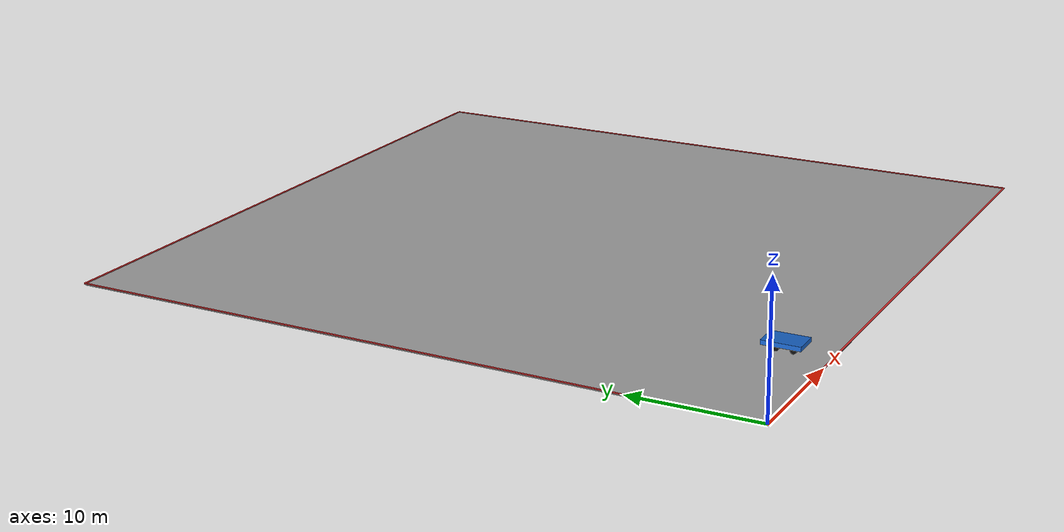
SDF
<?xml version="1.0"?>

<sdf version="1.10">

  <world name="test_world">

    <physics name="physics" type="ignored">
      <max_step_size>0.001</max_step_size>
      <real_time_factor>1.0</real_time_factor>
    </physics>

    <plugin
      filename="gz-sim-physics-system"
      name="gz::sim::systems::Physics"/>

    <plugin
      filename="gz-sim-user-commands-system"
      name="gz::sim::systems::UserCommands"/>

    <plugin
      filename="gz-sim-scene-broadcaster-system"
      name="gz::sim::systems::SceneBroadcaster"/>

    <light type="directional" name="sun">
      <cast_shadows>true</cast_shadows>
      <pose>0 0 10 0 0 0</pose>
      <diffuse>0.8 0.8 0.8 1</diffuse>
      <specular>0.2 0.2 0.2 1</specular>

      <direction>-0.5 0.1 -0.9</direction>
    </light>

    <!-- LCBR WORKSPACE : [0,55] x [0,55] -->

    <model name="lcbr_workspace">
      <static>true</static>

      <!-- Center of [0,55] x [0,55] -->
      <pose>27.5 27.5 -0.05 0 0 0</pose>

      <link name="workspace_link">

        <collision name="workspace_collision">
          <geometry>
            <box>
              <size>55 55 0.10</size>
            </box>
          </geometry>
        </collision>

        <visual name="workspace_visual">
          <geometry>
            <box>
              <size>55 55 0.10</size>
            </box>
          </geometry>

          <material>
            <ambient>0.55 0.55 0.55 1</ambient>
            <diffuse>0.65 0.65 0.65 1</diffuse>
            <specular>0.05 0.05 0.05 1</specular>
          </material>
        </visual>

      </link>
    </model>

    <!-- VISUAL WORKSPACE BOUNDARIES                           -->
    <!-- These are visual only: they do NOT affect collisions -->

    <model name="boundary_south">
      <static>true</static>
      <pose>27.5 0 0.03 0 0 0</pose>
      <link name="link">
        <visual name="visual">
          <geometry>
            <box>
              <size>55 0.15 0.06</size>
            </box>
          </geometry>
          <material>
            <ambient>0.9 0.2 0.2 1</ambient>
            <diffuse>0.9 0.2 0.2 1</diffuse>
          </material>
        </visual>
      </link>
    </model>

    <model name="boundary_north">
      <static>true</static>
      <pose>27.5 55 0.03 0 0 0</pose>
      <link name="link">
        <visual name="visual">
          <geometry>
            <box>
              <size>55 0.15 0.06</size>
            </box>
          </geometry>
          <material>
            <ambient>0.9 0.2 0.2 1</ambient>
            <diffuse>0.9 0.2 0.2 1</diffuse>
          </material>
        </visual>
      </link>
    </model>

    <model name="boundary_west">
      <static>true</static>
      <pose>0 27.5 0.03 0 0 0</pose>
      <link name="link">
        <visual name="visual">
          <geometry>
            <box>
              <size>0.15 55 0.06</size>
            </box>
          </geometry>
          <material>
            <ambient>0.9 0.2 0.2 1</ambient>
            <diffuse>0.9 0.2 0.2 1</diffuse>
          </material>
        </visual>
      </link>
    </model>

    <model name="boundary_east">
      <static>true</static>
      <pose>55 27.5 0.03 0 0 0</pose>
      <link name="link">
        <visual name="visual">
          <geometry>
            <box>
              <size>0.15 55 0.06</size>
            </box>
          </geometry>
          <material>
            <ambient>0.9 0.2 0.2 1</ambient>
            <diffuse>0.9 0.2 0.2 1</diffuse>
          </material>
        </visual>
      </link>
    </model>

    <!-- UGV -->

    <include>
      <uri>model://ugv</uri>
      <name>ugv_1</name>

      <pose>
        12 4 0.05 0 0 -1.5708
      </pose>
    </include>

  </world>

</sdf>

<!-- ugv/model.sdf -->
<sdf version="1.10">

  <model name="ugv">

    <!-- REFERENCE CONVENTION                                  -->
    <!-- Model x=y=0 is the REAR AXLE CENTER, matching the     -->
    <!-- SHA*/LCBR State(x,y,yaw) reference. Front axle x=1.3. -->
    <!-- Planner footprint spans x=[-1,+2], y=[-1,+1].         -->

    <!-- CHASSIS -->
    <link name="base_link">
      <pose>0 0 0.35 0 0 0</pose>

      <inertial>
        <mass>20.0</mass>
        <inertia>
          <ixx>1.8</ixx>
          <iyy>3.0</iyy>
          <izz>3.5</izz>
        </inertia>
      </inertial>

      <collision name="collision">
        <!-- Planner footprint: rear axle reference, LB=1 m, LF=2 m. -->
        <pose>0.5 0 0 0 0 0</pose>
        <geometry>
          <box>
            <size>3.0 2.0 0.35</size>
          </box>
        </geometry>
      </collision>

      <visual name="visual">
        <!-- Visual body raised by 0.25 m so the wheels remain visible.
             Collision, inertia and Ackermann geometry are unchanged. -->
        <pose>0.5 0 0.25 0 0 0</pose>
        <geometry>
          <box>
            <size>3.0 2.0 0.35</size>
          </box>
        </geometry>
        <material>
          <ambient>0.1 0.4 0.8 1</ambient>
          <diffuse>0.1 0.4 0.8 1</diffuse>
        </material>
      </visual>
    </link>

    <!-- FRONT STEERING LINKS -->

    <link name="front_left_steering_link">
      <pose>1.30 0.58 0.25 0 0 0</pose>
      <inertial>
        <mass>0.1</mass>
        <inertia>
          <ixx>0.001</ixx>
          <iyy>0.001</iyy>
          <izz>0.001</izz>
        </inertia>
      </inertial>
    </link>

    <link name="front_right_steering_link">
      <pose>1.30 -0.58 0.25 0 0 0</pose>
      <inertial>
        <mass>0.1</mass>
        <inertia>
          <ixx>0.001</ixx>
          <iyy>0.001</iyy>
          <izz>0.001</izz>
        </inertia>
      </inertial>
    </link>

    <!-- FRONT LEFT WHEEL -->
    <!-- Link frame stays aligned with vehicle. -->
    <!-- Cylinder geometry is rotated so axle is along Y. -->

    <link name="front_left_wheel">
      <pose>1.30 0.58 0.25 0 0 0</pose>

      <inertial>
        <mass>1.0</mass>
        <inertia>
          <ixx>0.03</ixx>
          <iyy>0.02</iyy>
          <izz>0.03</izz>
        </inertia>
      </inertial>

      <collision name="collision">
        <pose>0 0 0 1.5708 0 0</pose>

        <surface>
          <friction>
            <ode>
              <mu>1.0</mu>
              <mu2>1.0</mu2>
            </ode>
          </friction>
        </surface>

        <geometry>
          <cylinder>
            <radius>0.25</radius>
            <length>0.16</length>
          </cylinder>
        </geometry>
      </collision>

      <visual name="visual">
        <pose>0 0 0 1.5708 0 0</pose>

        <geometry>
          <cylinder>
            <radius>0.25</radius>
            <length>0.16</length>
          </cylinder>
        </geometry>

        <material>
          <ambient>0.05 0.05 0.05 1</ambient>
          <diffuse>0.05 0.05 0.05 1</diffuse>
        </material>
      </visual>
    </link>

    <!-- FRONT RIGHT WHEEL -->

    <link name="front_right_wheel">
      <pose>1.30 -0.58 0.25 0 0 0</pose>

      <inertial>
        <mass>1.0</mass>
        <inertia>
          <ixx>0.03</ixx>
          <iyy>0.02</iyy>
          <izz>0.03</izz>
        </inertia>
      </inertial>

      <collision name="collision">
        <pose>0 0 0 1.5708 0 0</pose>

        <surface>
          <friction>
            <ode>
              <mu>1.0</mu>
              <mu2>1.0</mu2>
            </ode>
          </friction>
        </surface>

        <geometry>
          <cylinder>
            <radius>0.25</radius>
            <length>0.16</length>
          </cylinder>
        </geometry>
      </collision>

      <visual name="visual">
        <pose>0 0 0 1.5708 0 0</pose>

        <geometry>
          <cylinder>
            <radius>0.25</radius>
            <length>0.16</length>
          </cylinder>
        </geometry>

        <material>
          <ambient>0.05 0.05 0.05 1</ambient>
          <diffuse>0.05 0.05 0.05 1</diffuse>
        </material>
      </visual>
    </link>

    <!-- REAR LEFT WHEEL -->

    <link name="rear_left_wheel">
      <pose>0.0 0.58 0.25 0 0 0</pose>

      <inertial>
        <mass>1.0</mass>
        <inertia>
          <ixx>0.03</ixx>
          <iyy>0.02</iyy>
          <izz>0.03</izz>
        </inertia>
      </inertial>

      <collision name="collision">
        <pose>0 0 0 1.5708 0 0</pose>

        <surface>
          <friction>
            <ode>
              <mu>1.0</mu>
              <mu2>1.0</mu2>
            </ode>
          </friction>
        </surface>

        <geometry>
          <cylinder>
            <radius>0.25</radius>
            <length>0.16</length>
          </cylinder>
        </geometry>
      </collision>

      <visual name="visual">
        <pose>0 0 0 1.5708 0 0</pose>

        <geometry>
          <cylinder>
            <radius>0.25</radius>
            <length>0.16</length>
          </cylinder>
        </geometry>

        <material>
          <ambient>0.05 0.05 0.05 1</ambient>
          <diffuse>0.05 0.05 0.05 1</diffuse>
        </material>
      </visual>
    </link>

    <!-- REAR RIGHT WHEEL -->

    <link name="rear_right_wheel">
      <pose>0.0 -0.58 0.25 0 0 0</pose>

      <inertial>
        <mass>1.0</mass>
        <inertia>
          <ixx>0.03</ixx>
          <iyy>0.02</iyy>
          <izz>0.03</izz>
        </inertia>
      </inertial>

      <collision name="collision">
        <pose>0 0 0 1.5708 0 0</pose>

        <surface>
          <friction>
            <ode>
              <mu>1.0</mu>
              <mu2>1.0</mu2>
            </ode>
          </friction>
        </surface>

        <geometry>
          <cylinder>
            <radius>0.25</radius>
            <length>0.16</length>
          </cylinder>
        </geometry>
      </collision>

      <visual name="visual">
        <pose>0 0 0 1.5708 0 0</pose>

        <geometry>
          <cylinder>
            <radius>0.25</radius>
            <length>0.16</length>
          </cylinder>
        </geometry>

        <material>
          <ambient>0.05 0.05 0.05 1</ambient>
          <diffuse>0.05 0.05 0.05 1</diffuse>
        </material>
      </visual>
    </link>

    <!-- STEERING JOINTS : rotation around Z -->

    <joint name="front_left_steering_joint" type="revolute">
      <parent>base_link</parent>
      <child>front_left_steering_link</child>

      <axis>
        <xyz>0 0 1</xyz>
        <limit>
          <lower>-0.60</lower>
          <upper>0.60</upper>
          <effort>100</effort>
          <velocity>2.0</velocity>
        </limit>
      </axis>
    </joint>

    <joint name="front_right_steering_joint" type="revolute">
      <parent>base_link</parent>
      <child>front_right_steering_link</child>

      <axis>
        <xyz>0 0 1</xyz>
        <limit>
          <lower>-0.60</lower>
          <upper>0.60</upper>
          <effort>100</effort>
          <velocity>2.0</velocity>
        </limit>
      </axis>
    </joint>

    <!-- FRONT WHEEL ROLLING JOINTS : rotation around Y -->

    <joint name="front_left_wheel_joint" type="revolute">
      <parent>front_left_steering_link</parent>
      <child>front_left_wheel</child>
      <axis>
        <xyz>0 1 0</xyz>
      </axis>
    </joint>

    <joint name="front_right_wheel_joint" type="revolute">
      <parent>front_right_steering_link</parent>
      <child>front_right_wheel</child>
      <axis>
        <xyz>0 1 0</xyz>
      </axis>
    </joint>

    <!-- REAR DRIVEN WHEELS : rotation around Y -->

    <joint name="rear_left_wheel_joint" type="revolute">
      <parent>base_link</parent>
      <child>rear_left_wheel</child>
      <axis>
        <xyz>0 1 0</xyz>
      </axis>
    </joint>

    <joint name="rear_right_wheel_joint" type="revolute">
      <parent>base_link</parent>
      <child>rear_right_wheel</child>
      <axis>
        <xyz>0 1 0</xyz>
      </axis>
    </joint>

    <!-- ACKERMANN STEERING SYSTEM -->

    <plugin
      filename="gz-sim-ackermann-steering-system"
      name="gz::sim::systems::AckermannSteering">

      <left_steering_joint>
        front_left_steering_joint
      </left_steering_joint>

      <right_steering_joint>
        front_right_steering_joint
      </right_steering_joint>

      <left_joint>
        rear_left_wheel_joint
      </left_joint>

      <right_joint>
        rear_right_wheel_joint
      </right_joint>

      <wheel_base>1.30</wheel_base>
      <wheel_separation>1.16</wheel_separation>
      <wheel_radius>0.25</wheel_radius>

      <min_velocity>-2.0</min_velocity>
      <max_velocity>2.0</max_velocity>

      <min_acceleration>-1.0</min_acceleration>
      <max_acceleration>1.0</max_acceleration>

      <steering_limit>0.448</steering_limit>
      <steer_p_gain>8.0</steer_p_gain>

      <topic>/ugv_1/cmd_vel</topic>

    </plugin>

  </model>

</sdf>
